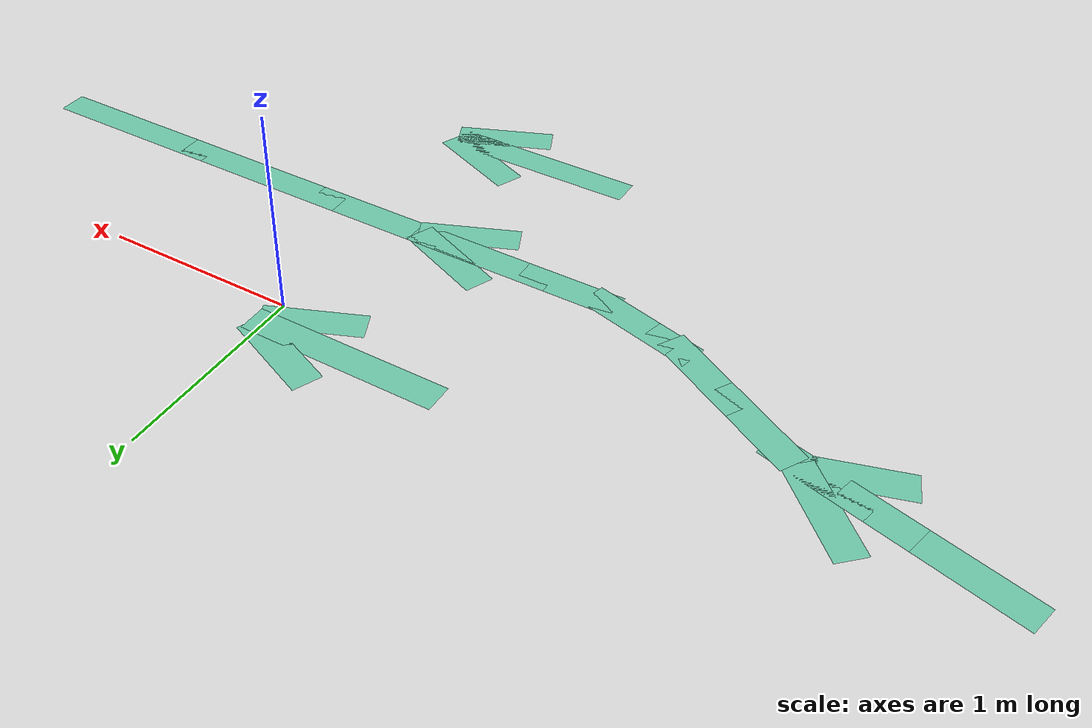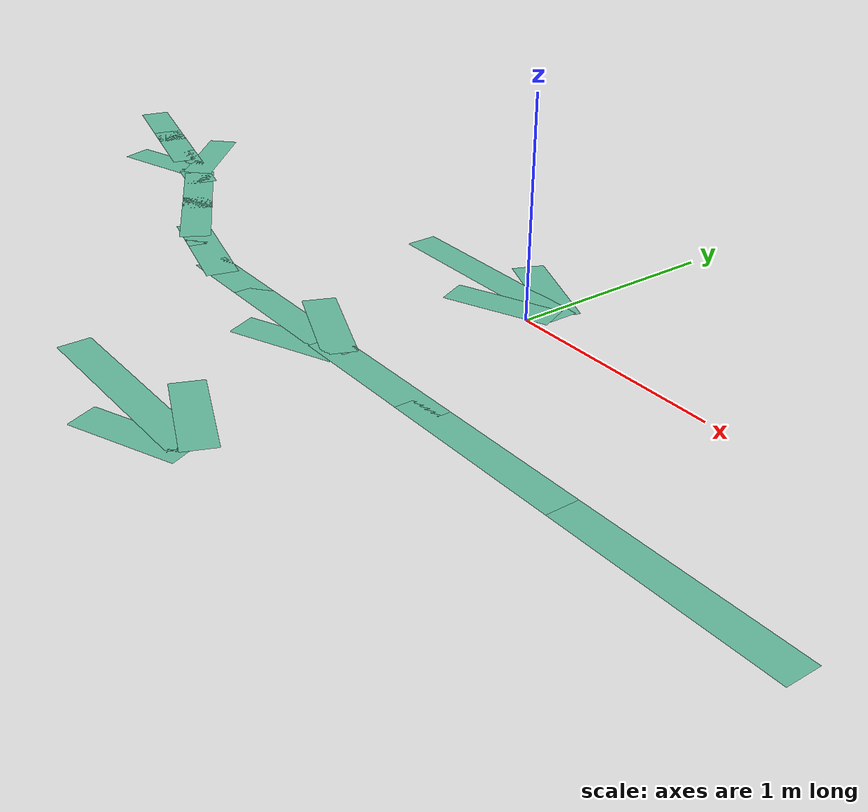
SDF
<sdf version="1.6">
 <model name="path_test">
  <link name="Wall_24">
   <pose>-3.11064 -0.100865 0 0 0 -0.261799</pose>
   <visual name="Wall_24_Visual">
    <geometry><box><size>0.5 0.15 0</size></box></geometry>
    <material>
     <script><uri>file://media/materials/scripts/gazebo.material</uri><name>Gazebo/Grey</name></script>
     <ambient>0.435294 0.796078 0.67451 1</ambient>
     <shader type="pixel"/>
    </material>
    <meta><layer>0</layer></meta>
   </visual>
   <collision name="Wall_24_Collision">
    <geometry><box><size>0.5 0.15 0</size></box></geometry>
    <surface>
     <friction>
      <ode><mu>1</mu><mu2>1</mu2><fdir1>0 0 0</fdir1><slip1>0</slip1><slip2>0</slip2></ode>
      <torsional>
       <coefficient>1</coefficient>
       <patch_radius>0</patch_radius>
       <surface_radius>0</surface_radius>
       <use_patch_radius>1</use_patch_radius>
       <ode><slip>0</slip></ode>
      </torsional>
     </friction>
     <bounce><restitution_coefficient>0</restitution_coefficient><threshold>1e+06</threshold></bounce>
     <contact>
      <collide_without_contact>0</collide_without_contact>
      <collide_without_contact_bitmask>1</collide_without_contact_bitmask>
      <collide_bitmask>1</collide_bitmask>
      <ode>
       <soft_cfm>0</soft_cfm>
       <soft_erp>0.2</soft_erp>
       <kp>1e+13</kp>
       <kd>1</kd>
       <max_vel>0.01</max_vel>
       <min_depth>0</min_depth>
      </ode>
      <bullet>
       <split_impulse>1</split_impulse>
       <split_impulse_penetration_threshold>-0.01</split_impulse_penetration_threshold>
       <soft_cfm>0</soft_cfm>
       <soft_erp>0.2</soft_erp>
       <kp>1e+13</kp>
       <kd>1</kd>
      </bullet>
     </contact>
    </surface>
   </collision>
  </link>
  <link name="Wall_25">
   <pose>-2.77256 -0.191452 0 0 0 -0.261799</pose>
   <visual name="Wall_25_Visual">
    <geometry><box><size>0.5 0.15 0</size></box></geometry>
    <material>
     <script><uri>file://media/materials/scripts/gazebo.material</uri><name>Gazebo/Grey</name></script>
     <ambient>0.435294 0.796078 0.67451 1</ambient>
     <shader type="pixel"/>
    </material>
    <meta><layer>0</layer></meta>
   </visual>
   <collision name="Wall_25_Collision">
    <geometry><box><size>0.5 0.15 0</size></box></geometry>
    <surface>
     <friction>
      <ode><mu>1</mu><mu2>1</mu2><fdir1>0 0 0</fdir1><slip1>0</slip1><slip2>0</slip2></ode>
      <torsional>
       <coefficient>1</coefficient>
       <patch_radius>0</patch_radius>
       <surface_radius>0</surface_radius>
       <use_patch_radius>1</use_patch_radius>
       <ode><slip>0</slip></ode>
      </torsional>
     </friction>
     <bounce><restitution_coefficient>0</restitution_coefficient><threshold>1e+06</threshold></bounce>
     <contact>
      <collide_without_contact>0</collide_without_contact>
      <collide_without_contact_bitmask>1</collide_without_contact_bitmask>
      <collide_bitmask>1</collide_bitmask>
      <ode>
       <soft_cfm>0</soft_cfm>
       <soft_erp>0.2</soft_erp>
       <kp>1e+13</kp>
       <kd>1</kd>
       <max_vel>0.01</max_vel>
       <min_depth>0</min_depth>
      </ode>
      <bullet>
       <split_impulse>1</split_impulse>
       <split_impulse_penetration_threshold>-0.01</split_impulse_penetration_threshold>
       <soft_cfm>0</soft_cfm>
       <soft_erp>0.2</soft_erp>
       <kp>1e+13</kp>
       <kd>1</kd>
      </bullet>
     </contact>
    </surface>
   </collision>
  </link>
  <link name="Wall_27">
   <pose>-2.1139 -0.414832 0 0 0 -0.523599</pose>
   <visual name="Wall_27_Visual">
    <geometry><box><size>0.5 0.15 0</size></box></geometry>
    <material>
     <script><uri>file://media/materials/scripts/gazebo.material</uri><name>Gazebo/Grey</name></script>
     <ambient>0.435294 0.796078 0.67451 1</ambient>
     <shader type="pixel"/>
    </material>
    <meta><layer>0</layer></meta>
   </visual>
   <collision name="Wall_27_Collision">
    <geometry><box><size>0.5 0.15 0</size></box></geometry>
    <surface>
     <friction>
      <ode><mu>1</mu><mu2>1</mu2><fdir1>0 0 0</fdir1><slip1>0</slip1><slip2>0</slip2></ode>
      <torsional>
       <coefficient>1</coefficient>
       <patch_radius>0</patch_radius>
       <surface_radius>0</surface_radius>
       <use_patch_radius>1</use_patch_radius>
       <ode><slip>0</slip></ode>
      </torsional>
     </friction>
     <bounce><restitution_coefficient>0</restitution_coefficient><threshold>1e+06</threshold></bounce>
     <contact>
      <collide_without_contact>0</collide_without_contact>
      <collide_without_contact_bitmask>1</collide_without_contact_bitmask>
      <collide_bitmask>1</collide_bitmask>
      <ode>
       <soft_cfm>0</soft_cfm>
       <soft_erp>0.2</soft_erp>
       <kp>1e+13</kp>
       <kd>1</kd>
       <max_vel>0.01</max_vel>
       <min_depth>0</min_depth>
      </ode>
      <bullet>
       <split_impulse>1</split_impulse>
       <split_impulse_penetration_threshold>-0.01</split_impulse_penetration_threshold>
       <soft_cfm>0</soft_cfm>
       <soft_erp>0.2</soft_erp>
       <kp>1e+13</kp>
       <kd>1</kd>
      </bullet>
     </contact>
    </surface>
   </collision>
  </link>
  <link name="Wall_28">
   <pose>-1.81079 -0.589831 0 0 0 -0.523599</pose>
   <visual name="Wall_28_Visual">
    <geometry><box><size>0.5 0.15 0</size></box></geometry>
    <material>
     <script><uri>file://media/materials/scripts/gazebo.material</uri><name>Gazebo/Grey</name></script>
     <ambient>0.435294 0.796078 0.67451 1</ambient>
     <shader type="pixel"/>
    </material>
    <meta><layer>0</layer></meta>
   </visual>
   <collision name="Wall_28_Collision">
    <geometry><box><size>0.5 0.15 0</size></box></geometry>
    <surface>
     <friction>
      <ode><mu>1</mu><mu2>1</mu2><fdir1>0 0 0</fdir1><slip1>0</slip1><slip2>0</slip2></ode>
      <torsional>
       <coefficient>1</coefficient>
       <patch_radius>0</patch_radius>
       <surface_radius>0</surface_radius>
       <use_patch_radius>1</use_patch_radius>
       <ode><slip>0</slip></ode>
      </torsional>
     </friction>
     <bounce><restitution_coefficient>0</restitution_coefficient><threshold>1e+06</threshold></bounce>
     <contact>
      <collide_without_contact>0</collide_without_contact>
      <collide_without_contact_bitmask>1</collide_without_contact_bitmask>
      <collide_bitmask>1</collide_bitmask>
      <ode>
       <soft_cfm>0</soft_cfm>
       <soft_erp>0.2</soft_erp>
       <kp>1e+13</kp>
       <kd>1</kd>
       <max_vel>0.01</max_vel>
       <min_depth>0</min_depth>
      </ode>
      <bullet>
       <split_impulse>1</split_impulse>
       <split_impulse_penetration_threshold>-0.01</split_impulse_penetration_threshold>
       <soft_cfm>0</soft_cfm>
       <soft_erp>0.2</soft_erp>
       <kp>1e+13</kp>
       <kd>1</kd>
      </bullet>
     </contact>
    </surface>
   </collision>
  </link>
  <link name="Wall_29">
   <pose>-1.61094 -0.690272 0 0 0 -0.261799</pose>
   <visual name="Wall_29_Visual">
    <geometry><box><size>0.25 0.15 0</size></box></geometry>
    <material>
     <script><uri>file://media/materials/scripts/gazebo.material</uri><name>Gazebo/Grey</name></script>
     <ambient>0.435294 0.796078 0.67451 1</ambient>
     <shader type="pixel"/>
    </material>
    <meta><layer>0</layer></meta>
   </visual>
   <collision name="Wall_29_Collision">
    <geometry><box><size>0.25 0.15 0</size></box></geometry>
    <surface>
     <friction>
      <ode><mu>1</mu><mu2>1</mu2><fdir1>0 0 0</fdir1><slip1>0</slip1><slip2>0</slip2></ode>
      <torsional>
       <coefficient>1</coefficient>
       <patch_radius>0</patch_radius>
       <surface_radius>0</surface_radius>
       <use_patch_radius>1</use_patch_radius>
       <ode><slip>0</slip></ode>
      </torsional>
     </friction>
     <bounce><restitution_coefficient>0</restitution_coefficient><threshold>1e+06</threshold></bounce>
     <contact>
      <collide_without_contact>0</collide_without_contact>
      <collide_without_contact_bitmask>1</collide_without_contact_bitmask>
      <collide_bitmask>1</collide_bitmask>
      <ode>
       <soft_cfm>0</soft_cfm>
       <soft_erp>0.2</soft_erp>
       <kp>1e+13</kp>
       <kd>1</kd>
       <max_vel>0.01</max_vel>
       <min_depth>0</min_depth>
      </ode>
      <bullet>
       <split_impulse>1</split_impulse>
       <split_impulse_penetration_threshold>-0.01</split_impulse_penetration_threshold>
       <soft_cfm>0</soft_cfm>
       <soft_erp>0.2</soft_erp>
       <kp>1e+13</kp>
       <kd>1</kd>
      </bullet>
     </contact>
    </surface>
   </collision>
  </link>
  <link name="Wall_30">
   <pose>-1.39361 -0.748507 0 0 0 -0.261799</pose>
   <visual name="Wall_30_Visual">
    <geometry><box><size>0.5 0.15 0</size></box></geometry>
    <material>
     <script><uri>file://media/materials/scripts/gazebo.material</uri><name>Gazebo/Grey</name></script>
     <ambient>0.435294 0.796078 0.67451 1</ambient>
     <shader type="pixel"/>
    </material>
    <meta><layer>0</layer></meta>
   </visual>
   <collision name="Wall_30_Collision">
    <geometry><box><size>0.5 0.15 0</size></box></geometry>
    <surface>
     <friction>
      <ode><mu>1</mu><mu2>1</mu2><fdir1>0 0 0</fdir1><slip1>0</slip1><slip2>0</slip2></ode>
      <torsional>
       <coefficient>1</coefficient>
       <patch_radius>0</patch_radius>
       <surface_radius>0</surface_radius>
       <use_patch_radius>1</use_patch_radius>
       <ode><slip>0</slip></ode>
      </torsional>
     </friction>
     <bounce><restitution_coefficient>0</restitution_coefficient><threshold>1e+06</threshold></bounce>
     <contact>
      <collide_without_contact>0</collide_without_contact>
      <collide_without_contact_bitmask>1</collide_without_contact_bitmask>
      <collide_bitmask>1</collide_bitmask>
      <ode>
       <soft_cfm>0</soft_cfm>
       <soft_erp>0.2</soft_erp>
       <kp>1e+13</kp>
       <kd>1</kd>
       <max_vel>0.01</max_vel>
       <min_depth>0</min_depth>
      </ode>
      <bullet>
       <split_impulse>1</split_impulse>
       <split_impulse_penetration_threshold>-0.01</split_impulse_penetration_threshold>
       <soft_cfm>0</soft_cfm>
       <soft_erp>0.2</soft_erp>
       <kp>1e+13</kp>
       <kd>1</kd>
      </bullet>
     </contact>
    </surface>
   </collision>
  </link>
  <link name="Wall_30_clone_clone_0_clone_0_clone">
   <pose>-2.5096 -0.121844 0 0 0 -0.8</pose>
   <inertial>
    <mass>1</mass>
    <inertia><ixx>1</ixx><ixy>0</ixy><ixz>0</ixz><iyy>1</iyy><iyz>0</iyz><izz>1</izz></inertia>
   </inertial>
   <visual name="Wall_30_Visual">
    <geometry><box><size>0.5 0.15 0</size></box></geometry>
    <material>
     <script><uri>file://media/materials/scripts/gazebo.material</uri><name>Gazebo/Grey</name></script>
     <ambient>0.435 0.796 0.675 1</ambient>
     <shader type="pixel"><normal_map>__default__</normal_map></shader>
     <diffuse>0.7 0.7 0.7 1</diffuse>
     <specular>0.01 0.01 0.01 1</specular>
     <emissive>0 0 0 1</emissive>
    </material>
    <meta><layer>0</layer></meta>
   </visual>
   <collision name="Wall_30_Collision">
    <geometry><box><size>0.5 0.15 0</size></box></geometry>
    <surface>
     <friction>
      <ode><mu>1</mu><mu2>1</mu2><fdir1>0 0 0</fdir1><slip1>0</slip1><slip2>0</slip2></ode>
      <torsional>
       <coefficient>1</coefficient>
       <patch_radius>0</patch_radius>
       <surface_radius>0</surface_radius>
       <use_patch_radius>1</use_patch_radius>
       <ode><slip>0</slip></ode>
      </torsional>
     </friction>
     <bounce><restitution_coefficient>0</restitution_coefficient><threshold>1e+06</threshold></bounce>
     <contact>
      <collide_without_contact>0</collide_without_contact>
      <collide_without_contact_bitmask>1</collide_without_contact_bitmask>
      <collide_bitmask>1</collide_bitmask>
      <ode>
       <soft_cfm>0</soft_cfm>
       <soft_erp>0.2</soft_erp>
       <kp>1e+13</kp>
       <kd>1</kd>
       <max_vel>0.01</max_vel>
       <min_depth>0</min_depth>
      </ode>
      <bullet>
       <split_impulse>1</split_impulse>
       <split_impulse_penetration_threshold>-0.01</split_impulse_penetration_threshold>
       <soft_cfm>0</soft_cfm>
       <soft_erp>0.2</soft_erp>
       <kp>1e+13</kp>
       <kd>1</kd>
      </bullet>
     </contact>
    </surface>
   </collision>
  </link>
  <link name="Wall_30_clone_clone_0_clone_0_clone_0">
   <pose>-2.55941 -0.352224 0 0 -0 0.3</pose>
   <inertial>
    <mass>1</mass>
    <inertia><ixx>1</ixx><ixy>0</ixy><ixz>0</ixz><iyy>1</iyy><iyz>0</iyz><izz>1</izz></inertia>
   </inertial>
   <visual name="Wall_30_Visual">
    <geometry><box><size>0.5 0.15 0</size></box></geometry>
    <material>
     <script><uri>file://media/materials/scripts/gazebo.material</uri><name>Gazebo/Grey</name></script>
     <ambient>0.435 0.796 0.675 1</ambient>
     <shader type="pixel"><normal_map>__default__</normal_map></shader>
     <diffuse>0.7 0.7 0.7 1</diffuse>
     <specular>0.01 0.01 0.01 1</specular>
     <emissive>0 0 0 1</emissive>
    </material>
    <meta><layer>0</layer></meta>
   </visual>
   <collision name="Wall_30_Collision">
    <geometry><box><size>0.5 0.15 0</size></box></geometry>
    <surface>
     <friction>
      <ode><mu>1</mu><mu2>1</mu2><fdir1>0 0 0</fdir1><slip1>0</slip1><slip2>0</slip2></ode>
      <torsional>
       <coefficient>1</coefficient>
       <patch_radius>0</patch_radius>
       <surface_radius>0</surface_radius>
       <use_patch_radius>1</use_patch_radius>
       <ode><slip>0</slip></ode>
      </torsional>
     </friction>
     <bounce><restitution_coefficient>0</restitution_coefficient><threshold>1e+06</threshold></bounce>
     <contact>
      <collide_without_contact>0</collide_without_contact>
      <collide_without_contact_bitmask>1</collide_without_contact_bitmask>
      <collide_bitmask>1</collide_bitmask>
      <ode>
       <soft_cfm>0</soft_cfm>
       <soft_erp>0.2</soft_erp>
       <kp>1e+13</kp>
       <kd>1</kd>
       <max_vel>0.01</max_vel>
       <min_depth>0</min_depth>
      </ode>
      <bullet>
       <split_impulse>1</split_impulse>
       <split_impulse_penetration_threshold>-0.01</split_impulse_penetration_threshold>
       <soft_cfm>0</soft_cfm>
       <soft_erp>0.2</soft_erp>
       <kp>1e+13</kp>
       <kd>1</kd>
      </bullet>
     </contact>
    </surface>
   </collision>
  </link>
  <link name="Wall_30_clone_clone_0_clone_clone_0_clone">
   <pose>-0.171138 0.256709 0 0 0 -0.4</pose>
   <inertial>
    <mass>1</mass>
    <inertia><ixx>1</ixx><ixy>0</ixy><ixz>0</ixz><iyy>1</iyy><iyz>0</iyz><izz>1</izz></inertia>
   </inertial>
   <visual name="Wall_30_Visual">
    <geometry><box><size>0.5 0.15 0</size></box></geometry>
    <material>
     <script><uri>file://media/materials/scripts/gazebo.material</uri><name>Gazebo/Grey</name></script>
     <ambient>0.435 0.796 0.675 1</ambient>
     <shader type="pixel"><normal_map>__default__</normal_map></shader>
     <diffuse>0.7 0.7 0.7 1</diffuse>
     <specular>0.01 0.01 0.01 1</specular>
     <emissive>0 0 0 1</emissive>
    </material>
    <meta><layer>0</layer></meta>
   </visual>
   <collision name="Wall_30_Collision">
    <geometry><box><size>0.5 0.15 0</size></box></geometry>
    <surface>
     <friction>
      <ode><mu>1</mu><mu2>1</mu2><fdir1>0 0 0</fdir1><slip1>0</slip1><slip2>0</slip2></ode>
      <torsional>
       <coefficient>1</coefficient>
       <patch_radius>0</patch_radius>
       <surface_radius>0</surface_radius>
       <use_patch_radius>1</use_patch_radius>
       <ode><slip>0</slip></ode>
      </torsional>
     </friction>
     <bounce><restitution_coefficient>0</restitution_coefficient><threshold>1e+06</threshold></bounce>
     <contact>
      <collide_without_contact>0</collide_without_contact>
      <collide_without_contact_bitmask>1</collide_without_contact_bitmask>
      <collide_bitmask>1</collide_bitmask>
      <ode>
       <soft_cfm>0</soft_cfm>
       <soft_erp>0.2</soft_erp>
       <kp>1e+13</kp>
       <kd>1</kd>
       <max_vel>0.01</max_vel>
       <min_depth>0</min_depth>
      </ode>
      <bullet>
       <split_impulse>1</split_impulse>
       <split_impulse_penetration_threshold>-0.01</split_impulse_penetration_threshold>
       <soft_cfm>0</soft_cfm>
       <soft_erp>0.2</soft_erp>
       <kp>1e+13</kp>
       <kd>1</kd>
      </bullet>
     </contact>
    </surface>
   </collision>
  </link>
  <link name="Wall_30_clone_clone_0_clone_clone_clone">
   <pose>-0.448488 -0.701137 0 0 0 -0.4</pose>
   <inertial>
    <mass>1</mass>
    <inertia><ixx>1</ixx><ixy>0</ixy><ixz>0</ixz><iyy>1</iyy><iyz>0</iyz><izz>1</izz></inertia>
   </inertial>
   <visual name="Wall_30_Visual">
    <geometry><box><size>0.5 0.15 0</size></box></geometry>
    <material>
     <script><uri>file://media/materials/scripts/gazebo.material</uri><name>Gazebo/Grey</name></script>
     <ambient>0.435 0.796 0.675 1</ambient>
     <shader type="pixel"><normal_map>__default__</normal_map></shader>
     <diffuse>0.7 0.7 0.7 1</diffuse>
     <specular>0.01 0.01 0.01 1</specular>
     <emissive>0 0 0 1</emissive>
    </material>
    <meta><layer>0</layer></meta>
   </visual>
   <collision name="Wall_30_Collision">
    <geometry><box><size>0.5 0.15 0</size></box></geometry>
    <surface>
     <friction>
      <ode><mu>1</mu><mu2>1</mu2><fdir1>0 0 0</fdir1><slip1>0</slip1><slip2>0</slip2></ode>
      <torsional>
       <coefficient>1</coefficient>
       <patch_radius>0</patch_radius>
       <surface_radius>0</surface_radius>
       <use_patch_radius>1</use_patch_radius>
       <ode><slip>0</slip></ode>
      </torsional>
     </friction>
     <bounce><restitution_coefficient>0</restitution_coefficient><threshold>1e+06</threshold></bounce>
     <contact>
      <collide_without_contact>0</collide_without_contact>
      <collide_without_contact_bitmask>1</collide_without_contact_bitmask>
      <collide_bitmask>1</collide_bitmask>
      <ode>
       <soft_cfm>0</soft_cfm>
       <soft_erp>0.2</soft_erp>
       <kp>1e+13</kp>
       <kd>1</kd>
       <max_vel>0.01</max_vel>
       <min_depth>0</min_depth>
      </ode>
      <bullet>
       <split_impulse>1</split_impulse>
       <split_impulse_penetration_threshold>-0.01</split_impulse_penetration_threshold>
       <soft_cfm>0</soft_cfm>
       <soft_erp>0.2</soft_erp>
       <kp>1e+13</kp>
       <kd>1</kd>
      </bullet>
     </contact>
    </surface>
   </collision>
  </link>
  <link name="Wall_30_clone_clone_0_clone_clone_clone_0">
   <pose>-0.144179 -1.50856 0 0 0 -0.4</pose>
   <inertial>
    <mass>1</mass>
    <inertia><ixx>1</ixx><ixy>0</ixy><ixz>0</ixz><iyy>1</iyy><iyz>0</iyz><izz>1</izz></inertia>
   </inertial>
   <visual name="Wall_30_Visual">
    <geometry><box><size>0.5 0.15 0</size></box></geometry>
    <material>
     <script><uri>file://media/materials/scripts/gazebo.material</uri><name>Gazebo/Grey</name></script>
     <ambient>0.435 0.796 0.675 1</ambient>
     <shader type="pixel"><normal_map>__default__</normal_map></shader>
     <diffuse>0.7 0.7 0.7 1</diffuse>
     <specular>0.01 0.01 0.01 1</specular>
     <emissive>0 0 0 1</emissive>
    </material>
    <meta><layer>0</layer></meta>
   </visual>
   <collision name="Wall_30_Collision">
    <geometry><box><size>0.5 0.15 0</size></box></geometry>
    <surface>
     <friction>
      <ode><mu>1</mu><mu2>1</mu2><fdir1>0 0 0</fdir1><slip1>0</slip1><slip2>0</slip2></ode>
      <torsional>
       <coefficient>1</coefficient>
       <patch_radius>0</patch_radius>
       <surface_radius>0</surface_radius>
       <use_patch_radius>1</use_patch_radius>
       <ode><slip>0</slip></ode>
      </torsional>
     </friction>
     <bounce><restitution_coefficient>0</restitution_coefficient><threshold>1e+06</threshold></bounce>
     <contact>
      <collide_without_contact>0</collide_without_contact>
      <collide_without_contact_bitmask>1</collide_without_contact_bitmask>
      <collide_bitmask>1</collide_bitmask>
      <ode>
       <soft_cfm>0</soft_cfm>
       <soft_erp>0.2</soft_erp>
       <kp>1e+13</kp>
       <kd>1</kd>
       <max_vel>0.01</max_vel>
       <min_depth>0</min_depth>
      </ode>
      <bullet>
       <split_impulse>1</split_impulse>
       <split_impulse_penetration_threshold>-0.01</split_impulse_penetration_threshold>
       <soft_cfm>0</soft_cfm>
       <soft_erp>0.2</soft_erp>
       <kp>1e+13</kp>
       <kd>1</kd>
      </bullet>
     </contact>
    </surface>
   </collision>
  </link>
  <link name="Wall_30_clone_clone_clone_clone_0">
   <pose>-0.176148 0.013575 0 0 -0 0.4</pose>
   <inertial>
    <mass>1</mass>
    <inertia><ixx>1</ixx><ixy>0</ixy><ixz>0</ixz><iyy>1</iyy><iyz>0</iyz><izz>1</izz></inertia>
   </inertial>
   <visual name="Wall_30_Visual">
    <geometry><box><size>0.5 0.15 0</size></box></geometry>
    <material>
     <script><uri>file://media/materials/scripts/gazebo.material</uri><name>Gazebo/Grey</name></script>
     <ambient>0.435 0.796 0.675 1</ambient>
     <shader type="pixel"><normal_map>__default__</normal_map></shader>
     <diffuse>0.7 0.7 0.7 1</diffuse>
     <specular>0.01 0.01 0.01 1</specular>
     <emissive>0 0 0 1</emissive>
    </material>
    <meta><layer>0</layer></meta>
   </visual>
   <collision name="Wall_30_Collision">
    <geometry><box><size>0.5 0.15 0</size></box></geometry>
    <surface>
     <friction>
      <ode><mu>1</mu><mu2>1</mu2><fdir1>0 0 0</fdir1><slip1>0</slip1><slip2>0</slip2></ode>
      <torsional>
       <coefficient>1</coefficient>
       <patch_radius>0</patch_radius>
       <surface_radius>0</surface_radius>
       <use_patch_radius>1</use_patch_radius>
       <ode><slip>0</slip></ode>
      </torsional>
     </friction>
     <bounce><restitution_coefficient>0</restitution_coefficient><threshold>1e+06</threshold></bounce>
     <contact>
      <collide_without_contact>0</collide_without_contact>
      <collide_without_contact_bitmask>1</collide_without_contact_bitmask>
      <collide_bitmask>1</collide_bitmask>
      <ode>
       <soft_cfm>0</soft_cfm>
       <soft_erp>0.2</soft_erp>
       <kp>1e+13</kp>
       <kd>1</kd>
       <max_vel>0.01</max_vel>
       <min_depth>0</min_depth>
      </ode>
      <bullet>
       <split_impulse>1</split_impulse>
       <split_impulse_penetration_threshold>-0.01</split_impulse_penetration_threshold>
       <soft_cfm>0</soft_cfm>
       <soft_erp>0.2</soft_erp>
       <kp>1e+13</kp>
       <kd>1</kd>
      </bullet>
     </contact>
    </surface>
   </collision>
  </link>
  <link name="Wall_30_clone_clone_clone_clone_clone">
   <pose>-0.441074 -0.901347 0 0 -0 0.4</pose>
   <inertial>
    <mass>1</mass>
    <inertia><ixx>1</ixx><ixy>0</ixy><ixz>0</ixz><iyy>1</iyy><iyz>0</iyz><izz>1</izz></inertia>
   </inertial>
   <visual name="Wall_30_Visual">
    <geometry><box><size>0.5 0.15 0</size></box></geometry>
    <material>
     <script><uri>file://media/materials/scripts/gazebo.material</uri><name>Gazebo/Grey</name></script>
     <ambient>0.435 0.796 0.675 1</ambient>
     <shader type="pixel"><normal_map>__default__</normal_map></shader>
     <diffuse>0.7 0.7 0.7 1</diffuse>
     <specular>0.01 0.01 0.01 1</specular>
     <emissive>0 0 0 1</emissive>
    </material>
    <meta><layer>0</layer></meta>
   </visual>
   <collision name="Wall_30_Collision">
    <geometry><box><size>0.5 0.15 0</size></box></geometry>
    <surface>
     <friction>
      <ode><mu>1</mu><mu2>1</mu2><fdir1>0 0 0</fdir1><slip1>0</slip1><slip2>0</slip2></ode>
      <torsional>
       <coefficient>1</coefficient>
       <patch_radius>0</patch_radius>
       <surface_radius>0</surface_radius>
       <use_patch_radius>1</use_patch_radius>
       <ode><slip>0</slip></ode>
      </torsional>
     </friction>
     <bounce><restitution_coefficient>0</restitution_coefficient><threshold>1e+06</threshold></bounce>
     <contact>
      <collide_without_contact>0</collide_without_contact>
      <collide_without_contact_bitmask>1</collide_without_contact_bitmask>
      <collide_bitmask>1</collide_bitmask>
      <ode>
       <soft_cfm>0</soft_cfm>
       <soft_erp>0.2</soft_erp>
       <kp>1e+13</kp>
       <kd>1</kd>
       <max_vel>0.01</max_vel>
       <min_depth>0</min_depth>
      </ode>
      <bullet>
       <split_impulse>1</split_impulse>
       <split_impulse_penetration_threshold>-0.01</split_impulse_penetration_threshold>
       <soft_cfm>0</soft_cfm>
       <soft_erp>0.2</soft_erp>
       <kp>1e+13</kp>
       <kd>1</kd>
      </bullet>
     </contact>
    </surface>
   </collision>
  </link>
  <link name="Wall_30_clone_clone_clone_clone_clone_0">
   <pose>-0.149606 -1.75362 0 0 -0 0.4</pose>
   <inertial>
    <mass>1</mass>
    <inertia><ixx>1</ixx><ixy>0</ixy><ixz>0</ixz><iyy>1</iyy><iyz>0</iyz><izz>1</izz></inertia>
   </inertial>
   <visual name="Wall_30_Visual">
    <geometry><box><size>0.5 0.15 0</size></box></geometry>
    <material>
     <script><uri>file://media/materials/scripts/gazebo.material</uri><name>Gazebo/Grey</name></script>
     <ambient>0.435 0.796 0.675 1</ambient>
     <shader type="pixel"><normal_map>__default__</normal_map></shader>
     <diffuse>0.7 0.7 0.7 1</diffuse>
     <specular>0.01 0.01 0.01 1</specular>
     <emissive>0 0 0 1</emissive>
    </material>
    <meta><layer>0</layer></meta>
   </visual>
   <collision name="Wall_30_Collision">
    <geometry><box><size>0.5 0.15 0</size></box></geometry>
    <surface>
     <friction>
      <ode><mu>1</mu><mu2>1</mu2><fdir1>0 0 0</fdir1><slip1>0</slip1><slip2>0</slip2></ode>
      <torsional>
       <coefficient>1</coefficient>
       <patch_radius>0</patch_radius>
       <surface_radius>0</surface_radius>
       <use_patch_radius>1</use_patch_radius>
       <ode><slip>0</slip></ode>
      </torsional>
     </friction>
     <bounce><restitution_coefficient>0</restitution_coefficient><threshold>1e+06</threshold></bounce>
     <contact>
      <collide_without_contact>0</collide_without_contact>
      <collide_without_contact_bitmask>1</collide_without_contact_bitmask>
      <collide_bitmask>1</collide_bitmask>
      <ode>
       <soft_cfm>0</soft_cfm>
       <soft_erp>0.2</soft_erp>
       <kp>1e+13</kp>
       <kd>1</kd>
       <max_vel>0.01</max_vel>
       <min_depth>0</min_depth>
      </ode>
      <bullet>
       <split_impulse>1</split_impulse>
       <split_impulse_penetration_threshold>-0.01</split_impulse_penetration_threshold>
       <soft_cfm>0</soft_cfm>
       <soft_erp>0.2</soft_erp>
       <kp>1e+13</kp>
       <kd>1</kd>
      </bullet>
     </contact>
    </surface>
   </collision>
  </link>
  <link name="Wall_31">
   <pose>-1.04957 -0.7938 0 0 -0 0</pose>
   <visual name="Wall_31_Visual">
    <geometry><box><size>0.5 0.15 0</size></box></geometry>
    <material>
     <script><uri>file://media/materials/scripts/gazebo.material</uri><name>Gazebo/Grey</name></script>
     <ambient>0.435294 0.796078 0.67451 1</ambient>
     <shader type="pixel"/>
    </material>
    <meta><layer>0</layer></meta>
   </visual>
   <collision name="Wall_31_Collision">
    <geometry><box><size>0.5 0.15 0</size></box></geometry>
    <surface>
     <friction>
      <ode><mu>1</mu><mu2>1</mu2><fdir1>0 0 0</fdir1><slip1>0</slip1><slip2>0</slip2></ode>
      <torsional>
       <coefficient>1</coefficient>
       <patch_radius>0</patch_radius>
       <surface_radius>0</surface_radius>
       <use_patch_radius>1</use_patch_radius>
       <ode><slip>0</slip></ode>
      </torsional>
     </friction>
     <bounce><restitution_coefficient>0</restitution_coefficient><threshold>1e+06</threshold></bounce>
     <contact>
      <collide_without_contact>0</collide_without_contact>
      <collide_without_contact_bitmask>1</collide_without_contact_bitmask>
      <collide_bitmask>1</collide_bitmask>
      <ode>
       <soft_cfm>0</soft_cfm>
       <soft_erp>0.2</soft_erp>
       <kp>1e+13</kp>
       <kd>1</kd>
       <max_vel>0.01</max_vel>
       <min_depth>0</min_depth>
      </ode>
      <bullet>
       <split_impulse>1</split_impulse>
       <split_impulse_penetration_threshold>-0.01</split_impulse_penetration_threshold>
       <soft_cfm>0</soft_cfm>
       <soft_erp>0.2</soft_erp>
       <kp>1e+13</kp>
       <kd>1</kd>
      </bullet>
     </contact>
    </surface>
   </collision>
  </link>
  <link name="Wall_32">
   <pose>-0.574569 -0.7938 0 0 -0 0</pose>
   <visual name="Wall_32_Visual">
    <geometry><box><size>0.75 0.15 0</size></box></geometry>
    <material>
     <script><uri>file://media/materials/scripts/gazebo.material</uri><name>Gazebo/Grey</name></script>
     <ambient>0.435294 0.796078 0.67451 1</ambient>
     <shader type="pixel"/>
    </material>
    <meta><layer>0</layer></meta>
   </visual>
   <collision name="Wall_32_Collision">
    <geometry><box><size>0.75 0.15 0</size></box></geometry>
    <surface>
     <friction>
      <ode><mu>1</mu><mu2>1</mu2><fdir1>0 0 0</fdir1><slip1>0</slip1><slip2>0</slip2></ode>
      <torsional>
       <coefficient>1</coefficient>
       <patch_radius>0</patch_radius>
       <surface_radius>0</surface_radius>
       <use_patch_radius>1</use_patch_radius>
       <ode><slip>0</slip></ode>
      </torsional>
     </friction>
     <bounce><restitution_coefficient>0</restitution_coefficient><threshold>1e+06</threshold></bounce>
     <contact>
      <collide_without_contact>0</collide_without_contact>
      <collide_without_contact_bitmask>1</collide_without_contact_bitmask>
      <collide_bitmask>1</collide_bitmask>
      <ode>
       <soft_cfm>0</soft_cfm>
       <soft_erp>0.2</soft_erp>
       <kp>1e+13</kp>
       <kd>1</kd>
       <max_vel>0.01</max_vel>
       <min_depth>0</min_depth>
      </ode>
      <bullet>
       <split_impulse>1</split_impulse>
       <split_impulse_penetration_threshold>-0.01</split_impulse_penetration_threshold>
       <soft_cfm>0</soft_cfm>
       <soft_erp>0.2</soft_erp>
       <kp>1e+13</kp>
       <kd>1</kd>
      </bullet>
     </contact>
    </surface>
   </collision>
  </link>
  <link name="Wall_33">
   <pose>0.025431 -0.7938 0 0 -0 0</pose>
   <visual name="Wall_33_Visual">
    <geometry><box><size>0.75 0.15 0</size></box></geometry>
    <material>
     <script><uri>file://media/materials/scripts/gazebo.material</uri><name>Gazebo/Grey</name></script>
     <ambient>0.435294 0.796078 0.67451 1</ambient>
     <shader type="pixel"/>
    </material>
    <meta><layer>0</layer></meta>
   </visual>
   <collision name="Wall_33_Collision">
    <geometry><box><size>0.75 0.15 0</size></box></geometry>
    <surface>
     <friction>
      <ode><mu>1</mu><mu2>1</mu2><fdir1>0 0 0</fdir1><slip1>0</slip1><slip2>0</slip2></ode>
      <torsional>
       <coefficient>1</coefficient>
       <patch_radius>0</patch_radius>
       <surface_radius>0</surface_radius>
       <use_patch_radius>1</use_patch_radius>
       <ode><slip>0</slip></ode>
      </torsional>
     </friction>
     <bounce><restitution_coefficient>0</restitution_coefficient><threshold>1e+06</threshold></bounce>
     <contact>
      <collide_without_contact>0</collide_without_contact>
      <collide_without_contact_bitmask>1</collide_without_contact_bitmask>
      <collide_bitmask>1</collide_bitmask>
      <ode>
       <soft_cfm>0</soft_cfm>
       <soft_erp>0.2</soft_erp>
       <kp>1e+13</kp>
       <kd>1</kd>
       <max_vel>0.01</max_vel>
       <min_depth>0</min_depth>
      </ode>
      <bullet>
       <split_impulse>1</split_impulse>
       <split_impulse_penetration_threshold>-0.01</split_impulse_penetration_threshold>
       <soft_cfm>0</soft_cfm>
       <soft_erp>0.2</soft_erp>
       <kp>1e+13</kp>
       <kd>1</kd>
      </bullet>
     </contact>
    </surface>
   </collision>
  </link>
  <link name="Wall_34">
   <pose>0.750431 -0.7938 0 0 -0 0</pose>
   <visual name="Wall_34_Visual">
    <geometry><box><size>1 0.15 0</size></box></geometry>
    <material>
     <script><uri>file://media/materials/scripts/gazebo.material</uri><name>Gazebo/Grey</name></script>
     <ambient>0.435294 0.796078 0.67451 1</ambient>
     <shader type="pixel"/>
    </material>
    <meta><layer>0</layer></meta>
   </visual>
   <collision name="Wall_34_Collision">
    <geometry><box><size>1 0.15 0</size></box></geometry>
    <surface>
     <friction>
      <ode><mu>1</mu><mu2>1</mu2><fdir1>0 0 0</fdir1><slip1>0</slip1><slip2>0</slip2></ode>
      <torsional>
       <coefficient>1</coefficient>
       <patch_radius>0</patch_radius>
       <surface_radius>0</surface_radius>
       <use_patch_radius>1</use_patch_radius>
       <ode><slip>0</slip></ode>
      </torsional>
     </friction>
     <bounce><restitution_coefficient>0</restitution_coefficient><threshold>1e+06</threshold></bounce>
     <contact>
      <collide_without_contact>0</collide_without_contact>
      <collide_without_contact_bitmask>1</collide_without_contact_bitmask>
      <collide_bitmask>1</collide_bitmask>
      <ode>
       <soft_cfm>0</soft_cfm>
       <soft_erp>0.2</soft_erp>
       <kp>1e+13</kp>
       <kd>1</kd>
       <max_vel>0.01</max_vel>
       <min_depth>0</min_depth>
      </ode>
      <bullet>
       <split_impulse>1</split_impulse>
       <split_impulse_penetration_threshold>-0.01</split_impulse_penetration_threshold>
       <soft_cfm>0</soft_cfm>
       <soft_erp>0.2</soft_erp>
       <kp>1e+13</kp>
       <kd>1</kd>
      </bullet>
     </contact>
    </surface>
   </collision>
  </link>
  <link name="Wall_34_clone_clone_0_clone">
   <pose>-0.427347 0.139962 0 0 -0 0</pose>
   <visual name="Wall_34_Visual">
    <geometry><box><size>1 0.15 0</size></box></geometry>
    <material>
     <script><uri>file://media/materials/scripts/gazebo.material</uri><name>Gazebo/Grey</name></script>
     <ambient>0.435294 0.796078 0.67451 1</ambient>
     <shader type="pixel"/>
    </material>
    <meta><layer>0</layer></meta>
   </visual>
   <collision name="Wall_34_Collision">
    <geometry><box><size>1 0.15 0</size></box></geometry>
    <surface>
     <friction>
      <ode><mu>1</mu><mu2>1</mu2><fdir1>0 0 0</fdir1><slip1>0</slip1><slip2>0</slip2></ode>
      <torsional>
       <coefficient>1</coefficient>
       <patch_radius>0</patch_radius>
       <surface_radius>0</surface_radius>
       <use_patch_radius>1</use_patch_radius>
       <ode><slip>0</slip></ode>
      </torsional>
     </friction>
     <bounce><restitution_coefficient>0</restitution_coefficient><threshold>1e+06</threshold></bounce>
     <contact>
      <collide_without_contact>0</collide_without_contact>
      <collide_without_contact_bitmask>1</collide_without_contact_bitmask>
      <collide_bitmask>1</collide_bitmask>
      <ode>
       <soft_cfm>0</soft_cfm>
       <soft_erp>0.2</soft_erp>
       <kp>1e+13</kp>
       <kd>1</kd>
       <max_vel>0.01</max_vel>
       <min_depth>0</min_depth>
      </ode>
      <bullet>
       <split_impulse>1</split_impulse>
       <split_impulse_penetration_threshold>-0.01</split_impulse_penetration_threshold>
       <soft_cfm>0</soft_cfm>
       <soft_erp>0.2</soft_erp>
       <kp>1e+13</kp>
       <kd>1</kd>
      </bullet>
     </contact>
    </surface>
   </collision>
  </link>
  <link name="Wall_34_clone_clone_clone">
   <pose>-0.429336 -1.63421 0 0 -0 0</pose>
   <visual name="Wall_34_Visual">
    <geometry><box><size>1 0.15 0</size></box></geometry>
    <material>
     <script><uri>file://media/materials/scripts/gazebo.material</uri><name>Gazebo/Grey</name></script>
     <ambient>0.435294 0.796078 0.67451 1</ambient>
     <shader type="pixel"/>
    </material>
    <meta><layer>0</layer></meta>
   </visual>
   <collision name="Wall_34_Collision">
    <geometry><box><size>1 0.15 0</size></box></geometry>
    <surface>
     <friction>
      <ode><mu>1</mu><mu2>1</mu2><fdir1>0 0 0</fdir1><slip1>0</slip1><slip2>0</slip2></ode>
      <torsional>
       <coefficient>1</coefficient>
       <patch_radius>0</patch_radius>
       <surface_radius>0</surface_radius>
       <use_patch_radius>1</use_patch_radius>
       <ode><slip>0</slip></ode>
      </torsional>
     </friction>
     <bounce><restitution_coefficient>0</restitution_coefficient><threshold>1e+06</threshold></bounce>
     <contact>
      <collide_without_contact>0</collide_without_contact>
      <collide_without_contact_bitmask>1</collide_without_contact_bitmask>
      <collide_bitmask>1</collide_bitmask>
      <ode>
       <soft_cfm>0</soft_cfm>
       <soft_erp>0.2</soft_erp>
       <kp>1e+13</kp>
       <kd>1</kd>
       <max_vel>0.01</max_vel>
       <min_depth>0</min_depth>
      </ode>
      <bullet>
       <split_impulse>1</split_impulse>
       <split_impulse_penetration_threshold>-0.01</split_impulse_penetration_threshold>
       <soft_cfm>0</soft_cfm>
       <soft_erp>0.2</soft_erp>
       <kp>1e+13</kp>
       <kd>1</kd>
      </bullet>
     </contact>
    </surface>
   </collision>
  </link>
  <link name="Wall_35">
   <pose>1.60043 -0.7938 0 0 -0 0</pose>
   <visual name="Wall_35_Visual">
    <geometry><box><size>1 0.15 0</size></box></geometry>
    <material>
     <script><uri>file://media/materials/scripts/gazebo.material</uri><name>Gazebo/Grey</name></script>
     <ambient>0.435294 0.796078 0.67451 1</ambient>
     <shader type="pixel"/>
    </material>
    <meta><layer>0</layer></meta>
   </visual>
   <collision name="Wall_35_Collision">
    <geometry><box><size>1 0.15 0</size></box></geometry>
    <surface>
     <friction>
      <ode><mu>1</mu><mu2>1</mu2><fdir1>0 0 0</fdir1><slip1>0</slip1><slip2>0</slip2></ode>
      <torsional>
       <coefficient>1</coefficient>
       <patch_radius>0</patch_radius>
       <surface_radius>0</surface_radius>
       <use_patch_radius>1</use_patch_radius>
       <ode><slip>0</slip></ode>
      </torsional>
     </friction>
     <bounce><restitution_coefficient>0</restitution_coefficient><threshold>1e+06</threshold></bounce>
     <contact>
      <collide_without_contact>0</collide_without_contact>
      <collide_without_contact_bitmask>1</collide_without_contact_bitmask>
      <collide_bitmask>1</collide_bitmask>
      <ode>
       <soft_cfm>0</soft_cfm>
       <soft_erp>0.2</soft_erp>
       <kp>1e+13</kp>
       <kd>1</kd>
       <max_vel>0.01</max_vel>
       <min_depth>0</min_depth>
      </ode>
      <bullet>
       <split_impulse>1</split_impulse>
       <split_impulse_penetration_threshold>-0.01</split_impulse_penetration_threshold>
       <soft_cfm>0</soft_cfm>
       <soft_erp>0.2</soft_erp>
       <kp>1e+13</kp>
       <kd>1</kd>
      </bullet>
     </contact>
    </surface>
   </collision>
  </link>
  <link name="Wall_62">
   <pose>-2.43449 -0.282038 0 0 0 -0.261799</pose>
   <visual name="Wall_62_Visual">
    <geometry><box><size>0.5 0.15 0</size></box></geometry>
    <material>
     <script><uri>file://media/materials/scripts/gazebo.material</uri><name>Gazebo/Grey</name></script>
     <ambient>0.435294 0.796078 0.67451 1</ambient>
     <shader type="pixel"/>
    </material>
    <meta><layer>0</layer></meta>
   </visual>
   <collision name="Wall_62_Collision">
    <geometry><box><size>0.5 0.15 0</size></box></geometry>
    <surface>
     <friction>
      <ode><mu>1</mu><mu2>1</mu2><fdir1>0 0 0</fdir1><slip1>0</slip1><slip2>0</slip2></ode>
      <torsional>
       <coefficient>1</coefficient>
       <patch_radius>0</patch_radius>
       <surface_radius>0</surface_radius>
       <use_patch_radius>1</use_patch_radius>
       <ode><slip>0</slip></ode>
      </torsional>
     </friction>
     <bounce><restitution_coefficient>0</restitution_coefficient><threshold>1e+06</threshold></bounce>
     <contact>
      <collide_without_contact>0</collide_without_contact>
      <collide_without_contact_bitmask>1</collide_without_contact_bitmask>
      <collide_bitmask>1</collide_bitmask>
      <ode>
       <soft_cfm>0</soft_cfm>
       <soft_erp>0.2</soft_erp>
       <kp>1e+13</kp>
       <kd>1</kd>
       <max_vel>0.01</max_vel>
       <min_depth>0</min_depth>
      </ode>
      <bullet>
       <split_impulse>1</split_impulse>
       <split_impulse_penetration_threshold>-0.01</split_impulse_penetration_threshold>
       <soft_cfm>0</soft_cfm>
       <soft_erp>0.2</soft_erp>
       <kp>1e+13</kp>
       <kd>1</kd>
      </bullet>
     </contact>
    </surface>
   </collision>
  </link>
  <static>1</static>
 </model>
</sdf>
